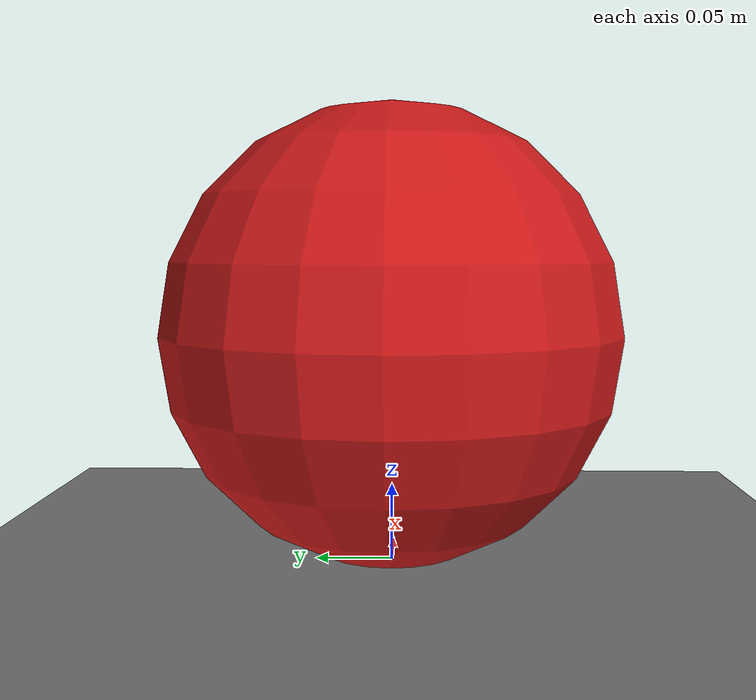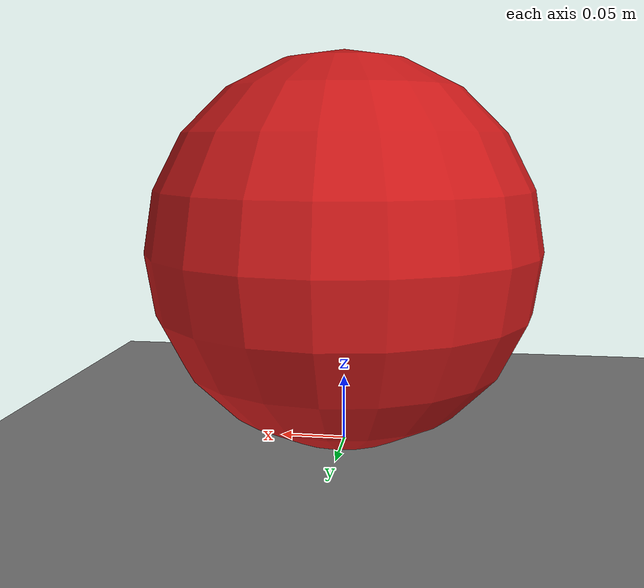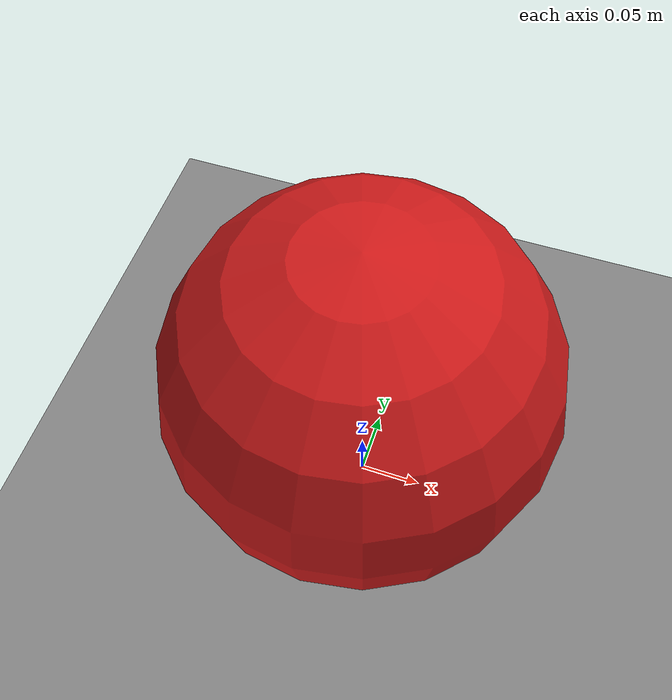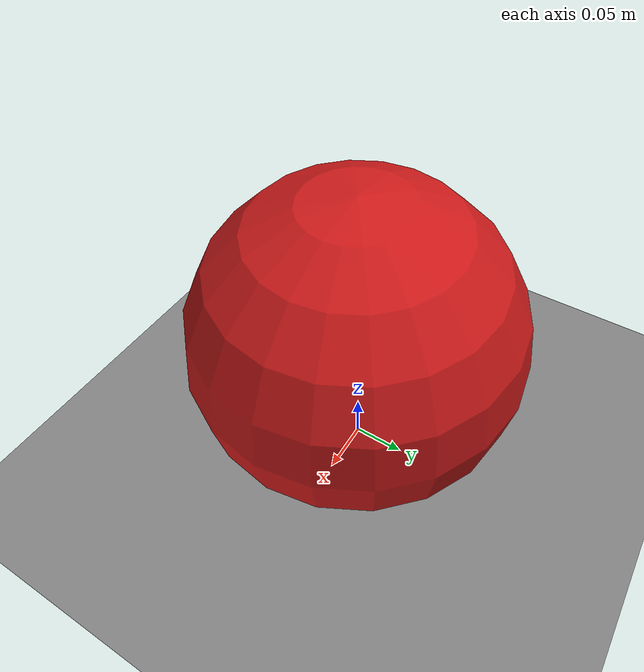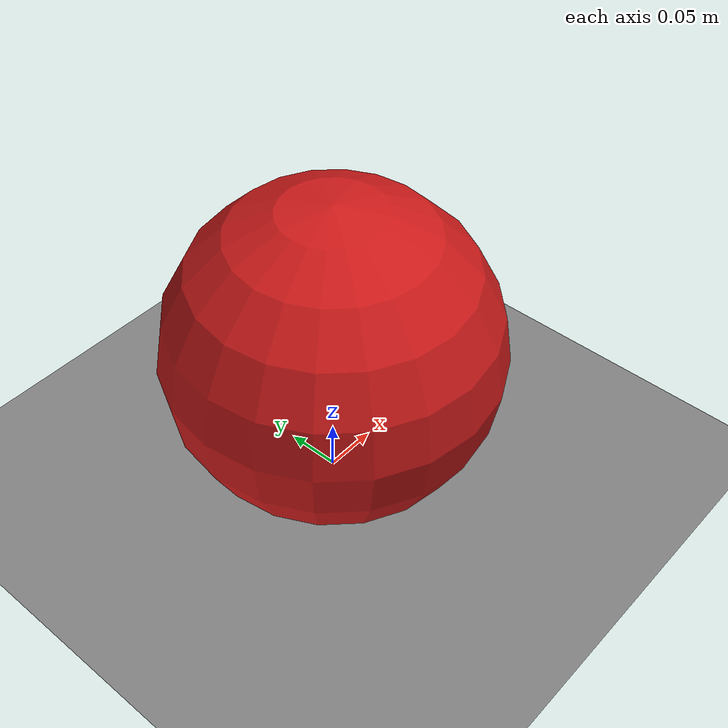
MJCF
<mujoco model="projectile">
  <option timestep="0.002" gravity="0 0 -9.81"/>
  <visual>
    <global offwidth="1280" offheight="720"/>
  </visual>

  <default>
    <geom friction="0.6 0.005 0.03"/>
  </default>

  <worldbody>
    <light diffuse="0.8 0.8 0.8" pos="4 0 4" dir="0 0 -1"/>

    <geom name="floor" type="plane" size="9 3 0.1" pos="4 0 0" rgba="0.5 0.5 0.5 1"/>

    <body name="ball" pos="0 0 0.15">
      <freejoint/>
      <geom name="ball_geom" type="sphere" size="0.15" mass="0.5" rgba="0.8 0.1 0.1 1"
            condim="6" solref="-30000 -30"/>
    </body>
  </worldbody>

  <keyframe>
    <key name="launch" qpos="0 0 0.15 1 0 0 0" qvel="2.5 0 4.0 0 0 0"/>
  </keyframe>
</mujoco>
